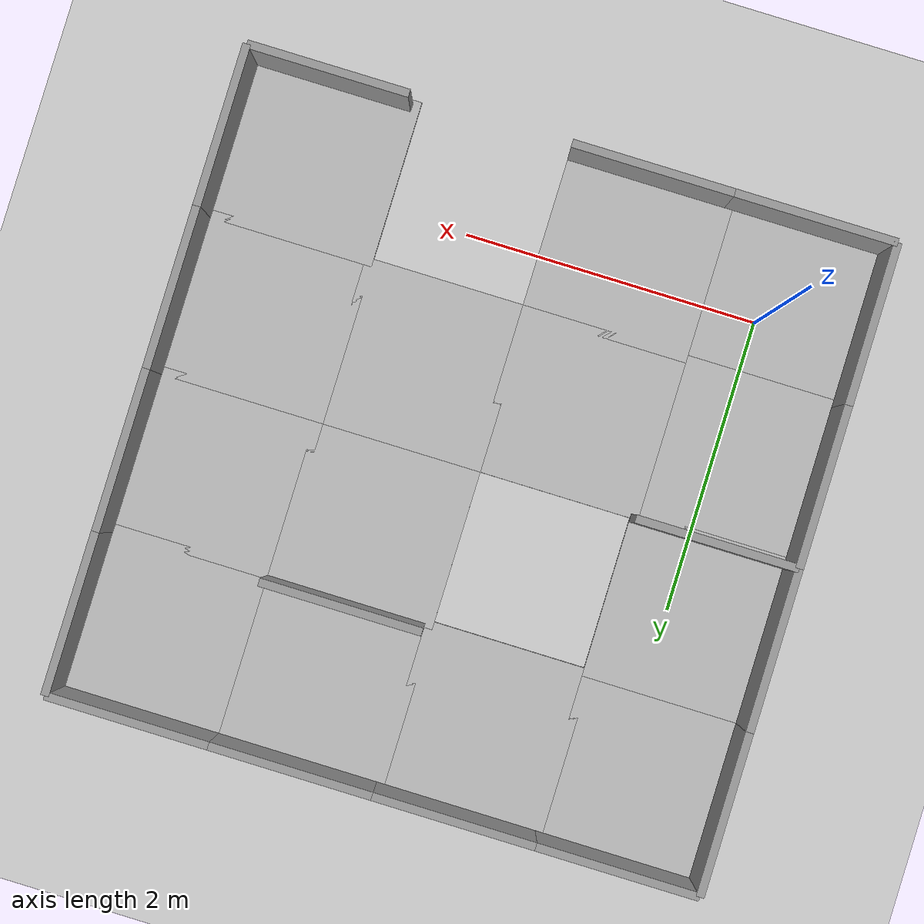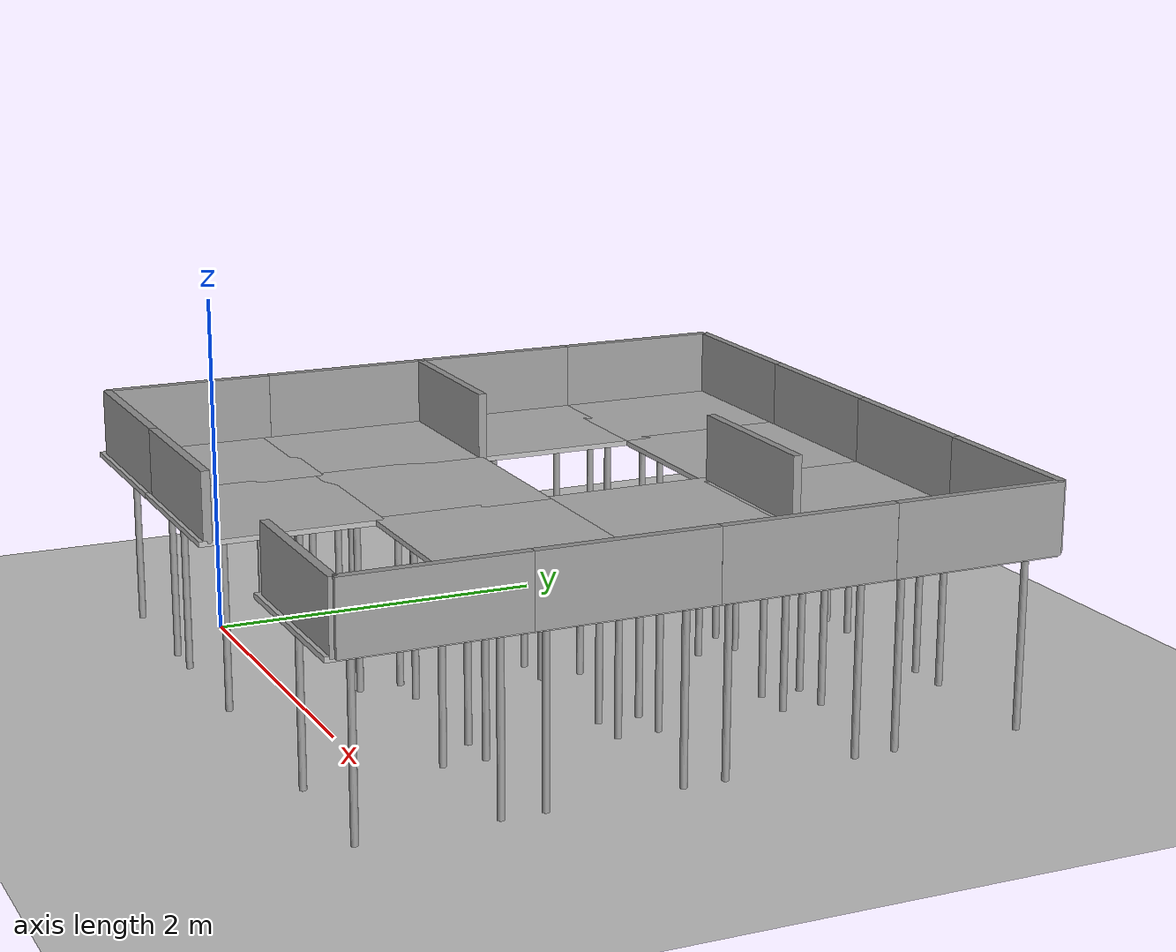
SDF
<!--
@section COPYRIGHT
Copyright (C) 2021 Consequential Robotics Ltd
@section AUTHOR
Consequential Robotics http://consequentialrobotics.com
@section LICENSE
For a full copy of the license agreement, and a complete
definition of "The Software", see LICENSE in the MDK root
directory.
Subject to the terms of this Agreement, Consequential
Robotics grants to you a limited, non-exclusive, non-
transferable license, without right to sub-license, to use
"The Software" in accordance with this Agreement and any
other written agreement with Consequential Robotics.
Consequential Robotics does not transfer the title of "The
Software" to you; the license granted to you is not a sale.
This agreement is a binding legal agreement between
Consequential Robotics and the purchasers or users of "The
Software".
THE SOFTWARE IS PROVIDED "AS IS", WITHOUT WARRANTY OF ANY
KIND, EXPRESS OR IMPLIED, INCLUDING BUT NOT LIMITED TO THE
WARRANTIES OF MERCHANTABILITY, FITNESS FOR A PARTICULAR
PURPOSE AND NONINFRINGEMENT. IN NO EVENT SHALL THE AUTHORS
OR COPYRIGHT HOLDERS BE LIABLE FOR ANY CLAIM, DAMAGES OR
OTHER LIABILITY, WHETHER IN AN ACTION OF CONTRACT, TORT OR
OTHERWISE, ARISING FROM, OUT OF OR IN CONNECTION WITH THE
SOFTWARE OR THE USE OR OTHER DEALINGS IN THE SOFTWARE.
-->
<sdf version="1.5">
 <world name="default">
  <physics name="default_physics" default="0" type="ode">
   <max_step_size>0.001</max_step_size>
   <real_time_factor>1</real_time_factor>
   <real_time_update_rate>1000</real_time_update_rate>
  </physics>
  <scene><ambient>0.2 0.2 0.2 1</ambient><background>0.2 0.2 0.2 1</background><shadows>0</shadows></scene>
  <light name="sun" type="directional">
   <cast_shadows>0</cast_shadows>
   <pose>0 0 10 0 -0 0</pose>
   <diffuse>0.8 0.8 0.8 1</diffuse>
   <specular>0.1 0.1 0.1 1</specular>
   <attenuation>
    <range>1000</range>
    <constant>0.9</constant>
    <linear>0.01</linear>
    <quadratic>0.001</quadratic>
   </attenuation>
   <direction>-0.5 0.5 -1</direction>
  </light>
  <include><uri>model://ground_plane</uri></include>
  <light name="chest_glow" type="point">
   <pose>2 2.67 1.22 0 0 0</pose>
   <diffuse>1 0.84 0 1</diffuse>
   <specular>1 0.84 0 1</specular>
   <attenuation>
    <range>0.8</range>
    <constant>0.1</constant>
    <linear>0.3</linear>
    <quadratic>2.0</quadratic>
   </attenuation>
   <direction>0 0 -1</direction>
  </light>
  <include><name>tile-1</name><uri>model://platform_tile</uri></include>
  <include><name>tile-2</name><uri>model://platform_tile</uri><pose>1 0 0 0 0 0</pose></include>
  <include><name>tile-4</name><uri>model://platform_tile</uri><pose>3 0 0 0 0 0</pose></include>
  <include><name>tile-5</name><uri>model://platform_tile</uri><pose>0 1 0 0 0 0</pose></include>
  <include><name>tile-6</name><uri>model://platform_tile</uri><pose>1 1 0 0 0 0</pose></include>
  <include><name>tile-7</name><uri>model://platform_tile</uri><pose>2 1 0 0 0 0</pose></include>
  <include><name>tile-8</name><uri>model://platform_tile</uri><pose>3 1 0 0 0 0</pose></include>
  <include><name>tile-9</name><uri>model://platform_tile</uri><pose>0 2 0 0 0 0</pose></include>
  <include><name>tile-11</name><uri>model://platform_tile</uri><pose>2 2 0 0 0 0</pose></include>
  <include><name>tile-12</name><uri>model://platform_tile</uri><pose>3 2 0 0 0 0</pose></include>
  <include><name>tile-13</name><uri>model://platform_tile</uri><pose>0 3 0 0 0 0</pose></include>
  <include><name>tile-14</name><uri>model://platform_tile</uri><pose>1 3 0 0 0 0</pose></include>
  <include><name>tile-15</name><uri>model://platform_tile</uri><pose>2 3 0 0 0 0</pose></include>
  <include><name>tile-16</name><uri>model://platform_tile</uri><pose>3 3 0 0 0 0</pose></include>
  <include><name>wall-1</name><uri>model://grey_wall</uri><pose>0 -0.5 1.2 0 0 0</pose></include>
  <include><name>wall-2</name><uri>model://grey_wall</uri><pose>1 -0.5 1.2 0 0 0</pose></include>
  <include><name>wall-3</name><uri>model://grey_wall</uri><pose>3 -0.5 1.2 0 0 0</pose></include>
  <include><name>wall-4</name><uri>model://grey_wall</uri><pose>3 -0.5 1.2 0 0 0</pose></include>
  <include><name>wall-5</name><uri>model://grey_wall</uri><pose>0 3.5 1.2 0 0 0</pose></include>
  <include><name>wall-6</name><uri>model://grey_wall</uri><pose>1 3.5 1.2 0 0 0</pose></include>
  <include><name>wall-7</name><uri>model://grey_wall</uri><pose>2 3.5 1.2 0 0 0</pose></include>
  <include><name>wall-8</name><uri>model://grey_wall</uri><pose>3 3.5 1.2 0 0 0</pose></include>
  <include><name>wall-9</name><uri>model://grey_wall</uri><pose>-0.5 0 1.2 0 0 -1.57</pose></include>
  <include><name>wall-10</name><uri>model://grey_wall</uri><pose>-0.5 1 1.2 0 0 -1.57</pose></include>
  <include><name>wall-11</name><uri>model://grey_wall</uri><pose>-0.5 2 1.2 0 0 -1.57</pose></include>
  <include><name>wall-12</name><uri>model://grey_wall</uri><pose>-0.5 3 1.2 0 0 -1.57</pose></include>
  <include><name>wall-13</name><uri>model://grey_wall</uri><pose>3.5 3 1.2 0 0 -1.57</pose></include>
  <include><name>wall-14</name><uri>model://grey_wall</uri><pose>3.5 2 1.2 0 0 -1.57</pose></include>
  <include><name>wall-15</name><uri>model://grey_wall</uri><pose>3.5 1 1.2 0 0 -1.57</pose></include>
  <include><name>wall-16</name><uri>model://grey_wall</uri><pose>3.5 0 1.2 0 0 -1.57</pose></include>
  <include><name>wall-inner-1</name><uri>model://grey_wall</uri><pose>0 1.5 1.2 0 0 0</pose></include>
  <include><name>wall-inner-2</name><uri>model://grey_wall</uri><pose>2 2.5 1.2 0 0 0</pose></include>
  <gravity>0 0 -9.8</gravity>
  <magnetic_field>6e-06 2.3e-05 -4.2e-05</magnetic_field>
  <atmosphere type="adiabatic"/>
  <spherical_coordinates>
   <surface_model>EARTH_WGS84</surface_model>
   <latitude_deg>0</latitude_deg>
   <longitude_deg>0</longitude_deg>
   <elevation>0</elevation>
   <heading_deg>0</heading_deg>
  </spherical_coordinates>
 </world>
</sdf>

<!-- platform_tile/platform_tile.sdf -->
<sdf version="1.5">
  <model name="platform_tile">
    <static>true</static>
    <link name="link">
      <collision name="surface">
        <pose>-0.025 -0.025 1.0 0 0 0</pose>
        <geometry>
          <box>
            <size>1.05 1.05 0.03</size>
          </box>
        </geometry>
        <surface>
          <friction>
            <ode>
              <mu>0.6</mu>
              <mu2>0.6</mu2>
            </ode>
          </friction>
        </surface>
      </collision>
      <visual name="surface">
        <pose>-0.025 -0.025 1.0 0 0 0</pose>
        <geometry>
          <box>
            <size>1.05 1.05 0.03</size>
          </box>
        </geometry>
        <material>
          <script>
            <uri>model://platform_tile/materials/scripts</uri>
            <uri>model://platform_tile/materials/textures</uri>
            <name>platform_tile/Diffuse</name>
          </script>
        </material>
      </visual>
      <collision name="front_left_leg">
        <pose>0.38 0.38 0.5 0 0 0</pose>
        <geometry>
          <cylinder>
            <radius>0.02</radius>
            <length>1.0</length>
          </cylinder>
        </geometry>
      </collision>
      <visual name="front_left_leg">
        <pose>0.38 0.38 0.5 0 0 0</pose>
        <geometry>
          <cylinder>
            <radius>0.02</radius>
            <length>1.0</length>
          </cylinder>
        </geometry>
        <material>
          <script>
            <uri>file://media/materials/scripts/gazebo.material</uri>
            <name>Gazebo/Grey</name>
          </script>
        </material>
      </visual>
      <collision name="front_right_leg">
        <pose>0.38 -0.38 0.5 0 0 0</pose>
        <geometry>
          <cylinder>
            <radius>0.02</radius>
            <length>1.0</length>
          </cylinder>
        </geometry>
      </collision>
      <visual name="front_right_leg">
        <pose>0.38 -0.38 0.5 0 0 0</pose>
        <geometry>
          <cylinder>
            <radius>0.02</radius>
            <length>1.0</length>
          </cylinder>
        </geometry>
        <material>
          <script>
            <uri>file://media/materials/scripts/gazebo.material</uri>
            <name>Gazebo/Grey</name>
          </script>
        </material>
      </visual>
      <collision name="back_right_leg">
        <pose>-0.38 -0.38 0.5 0 0 0</pose>
        <geometry>
          <cylinder>
            <radius>0.02</radius>
            <length>1.0</length>
          </cylinder>
        </geometry>
      </collision>
      <visual name="back_right_leg">
        <pose>-0.38 -0.38 0.5 0 0 0</pose>
        <geometry>
          <cylinder>
            <radius>0.02</radius>
            <length>1.0</length>
          </cylinder>
        </geometry>
        <material>
          <script>
            <uri>file://media/materials/scripts/gazebo.material</uri>
            <name>Gazebo/Grey</name>
          </script>
        </material>
      </visual>
      <collision name="back_left_leg">
        <pose>-0.38 0.38 0.5 0 0 0</pose>
        <geometry>
          <cylinder>
            <radius>0.02</radius>
            <length>1.0</length>
          </cylinder>
        </geometry>
      </collision>
      <visual name="back_left_leg">
        <pose>-0.38 0.38 0.5 0 0 0</pose>
        <geometry>
          <cylinder>
            <radius>0.02</radius>
            <length>1.0</length>
          </cylinder>
        </geometry>
        <material>
          <script>
            <uri>file://media/materials/scripts/gazebo.material</uri>
            <name>Gazebo/Grey</name>
          </script>
        </material>
      </visual>
    </link>
  </model>
</sdf>

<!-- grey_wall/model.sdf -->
<sdf version="1.5">
  <model name="grey_wall">
    <static>true</static>
    <link name="link">
      <pose>0 0 0 0 0 0</pose>
      <collision name="collision">
        <geometry>
          <box>
            <size>1 0.05 0.4</size>
          </box>
        </geometry>
      </collision>
      <visual name="visual">
        <cast_shadows>false</cast_shadows>
        <geometry>
          <box>
            <size>1 0.05 0.4</size>
          </box>
        </geometry>
        <material>
          <script>
            <uri>model://grey_wall/materials/scripts</uri>
            <uri>model://grey_wall/materials/textures</uri>
            <name>vrc/grey_wall</name>
          </script>
        </material>
      </visual>
    </link>
  </model>
</sdf>
